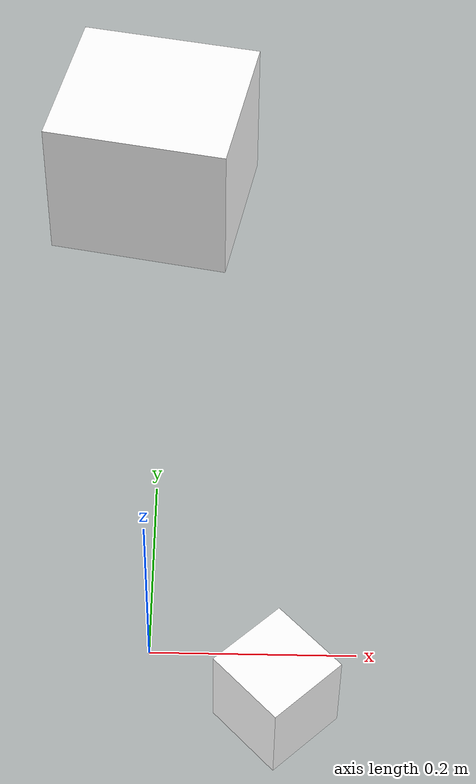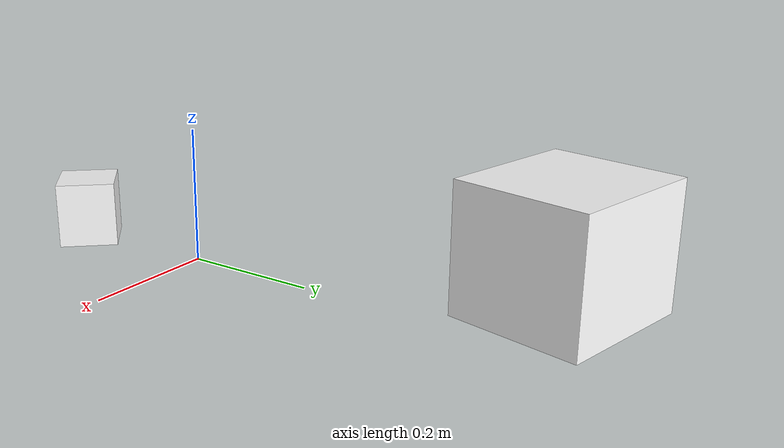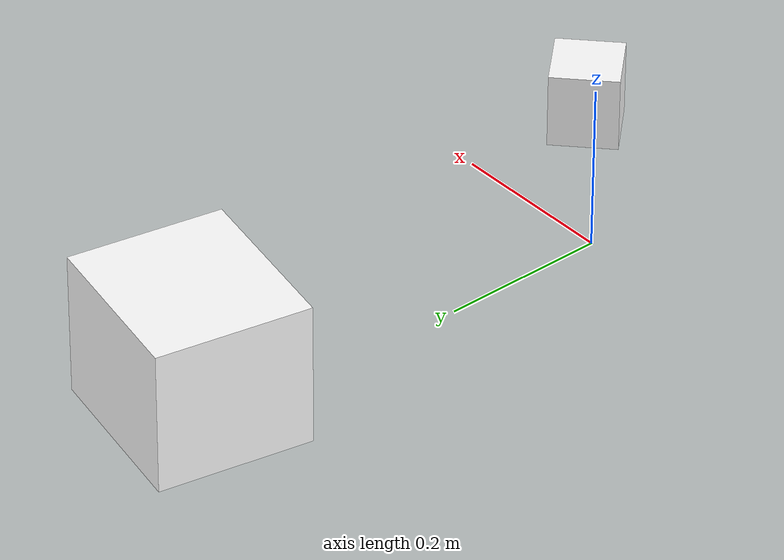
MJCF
<mujoco>
  <compiler angle="radian" />

  <visual>
    <headlight ambient="0.1 0.1 0.1" />
  </visual>

  <asset>
    <material name="white" rgba="1 1 1 1" />
    <material name="goal" rgba="0 0 0 0.3" />
  </asset>

  <option gravity="0 0 -9.8" />
  <worldbody>
    <body name="obj1" pos="-0.013407960859789902 0.573903604710781 0.135" quat="0.7737117923273013 0.0 0.0 0.6335377355877667">
      <joint type="free" />
      <inertial pos="0 0 0" mass="1" diaginertia="0.01 0.01 0.01" />
      <geom type="box" size="0.09 0.1 0.085" material="white" />

    </body>

    <body name="obj2" pos="0.11954686006369497 -0.09735813559266099 0.095" quat="0.3661759346009558 -0.0 -0.0 -0.9305456382784869">
      <joint type="free" />
      <inertial pos="0 0 0" mass="1" diaginertia="0.01 0.01 0.01" />
      <geom type="box" size="0.04 0.04 0.045" material="white" />

    </body>

  </worldbody>
</mujoco>
